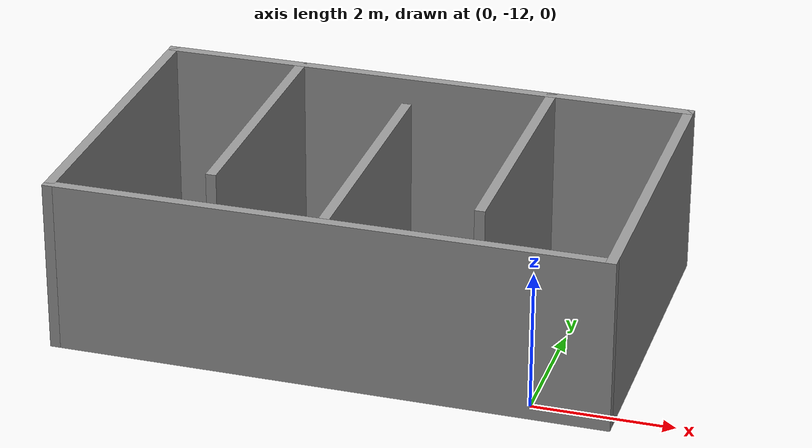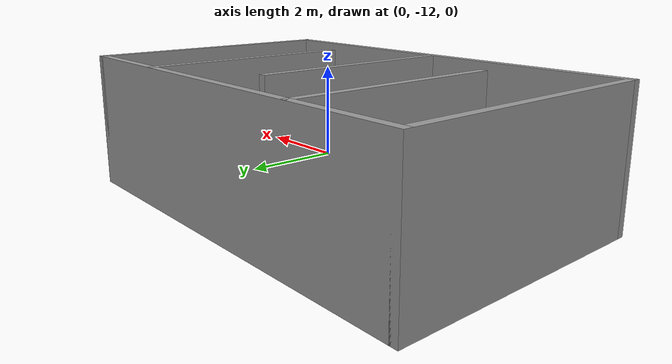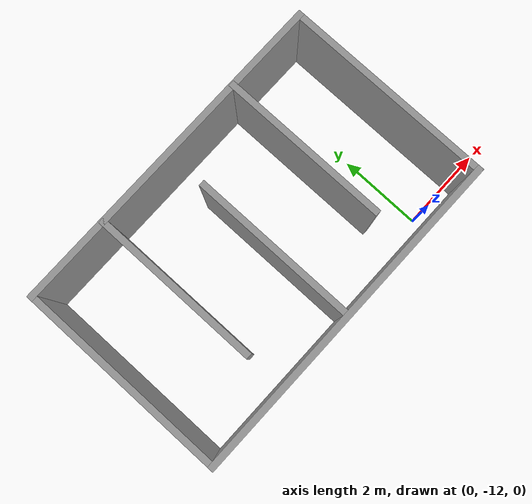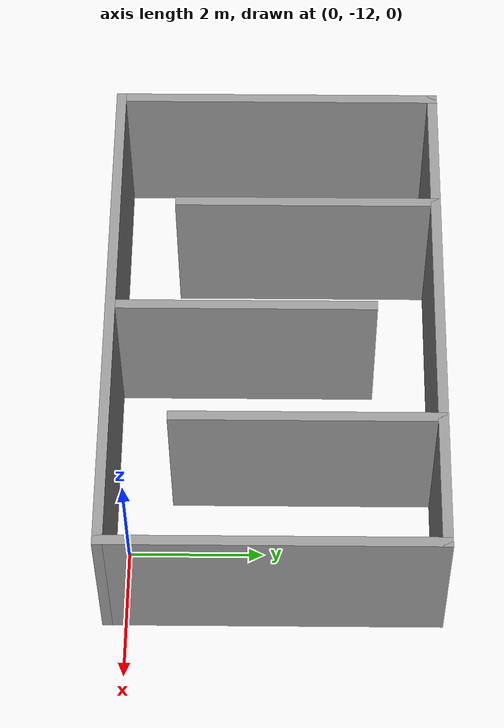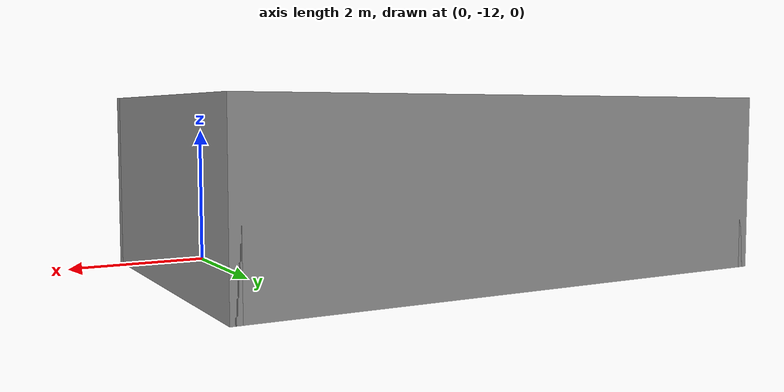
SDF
<?xml version='1.0'?>
<sdf version='1.6'>
  <model name='Map7'>
    <pose frame=''>-2.82471 -9.84609 0 0 -0 0</pose>
    <link name='Wall_22'>
      <collision name='Wall_22_Collision'>
        <geometry>
          <box>
            <size>8 0.15 2.5</size>
          </box>
        </geometry>
        <pose frame=''>0 0 1.25 0 -0 0</pose>
      </collision>
      <visual name='Wall_22_Visual'>
        <pose frame=''>0 0 1.25 0 -0 0</pose>
        <geometry>
          <box>
            <size>8 0.15 2.5</size>
          </box>
        </geometry>
        <material>
          <script>
            <uri>file://media/materials/scripts/gazebo.material</uri>
            <name>Gazebo/Grey</name>
          </script>
          <ambient>1 1 1 1</ambient>
        </material>
      </visual>
      <pose frame=''>0 2.425 0 0 -0 0</pose>
    </link>
    <link name='Wall_23'>
      <collision name='Wall_23_Collision'>
        <geometry>
          <box>
            <size>5 0.15 2.5</size>
          </box>
        </geometry>
        <pose frame=''>0 0 1.25 0 -0 0</pose>
      </collision>
      <visual name='Wall_23_Visual'>
        <pose frame=''>0 0 1.25 0 -0 0</pose>
        <geometry>
          <box>
            <size>5 0.15 2.5</size>
          </box>
        </geometry>
        <material>
          <script>
            <uri>file://media/materials/scripts/gazebo.material</uri>
            <name>Gazebo/Grey</name>
          </script>
          <ambient>1 1 1 1</ambient>
        </material>
      </visual>
      <pose frame=''>3.925 0 0 0 0 -1.5708</pose>
    </link>
    <link name='Wall_24'>
      <collision name='Wall_24_Collision'>
        <geometry>
          <box>
            <size>8 0.15 2.5</size>
          </box>
        </geometry>
        <pose frame=''>0 0 1.25 0 -0 0</pose>
      </collision>
      <visual name='Wall_24_Visual'>
        <pose frame=''>0 0 1.25 0 -0 0</pose>
        <geometry>
          <box>
            <size>8 0.15 2.5</size>
          </box>
        </geometry>
        <material>
          <script>
            <uri>file://media/materials/scripts/gazebo.material</uri>
            <name>Gazebo/Grey</name>
          </script>
          <ambient>1 1 1 1</ambient>
        </material>
      </visual>
      <pose frame=''>0 -2.425 0 0 -0 3.14159</pose>
    </link>
    <link name='Wall_25'>
      <collision name='Wall_25_Collision'>
        <geometry>
          <box>
            <size>5 0.15 2.5</size>
          </box>
        </geometry>
        <pose frame=''>0 0 1.25 0 -0 0</pose>
      </collision>
      <visual name='Wall_25_Visual'>
        <pose frame=''>0 0 1.25 0 -0 0</pose>
        <geometry>
          <box>
            <size>5 0.15 2.5</size>
          </box>
        </geometry>
        <material>
          <script>
            <uri>file://media/materials/scripts/gazebo.material</uri>
            <name>Gazebo/Grey</name>
          </script>
          <ambient>1 1 1 1</ambient>
        </material>
      </visual>
      <pose frame=''>-3.925 0 0 0 -0 1.5708</pose>
    </link>
    <link name='Wall_27'>
      <collision name='Wall_27_Collision'>
        <geometry>
          <box>
            <size>4 0.15 2.5</size>
          </box>
        </geometry>
        <pose frame=''>0 0 1.25 0 -0 0</pose>
      </collision>
      <visual name='Wall_27_Visual'>
        <pose frame=''>0 0 1.25 0 -0 0</pose>
        <geometry>
          <box>
            <size>4 0.15 2.5</size>
          </box>
        </geometry>
        <material>
          <script>
            <uri>file://media/materials/scripts/gazebo.material</uri>
            <name>Gazebo/Grey</name>
          </script>
          <ambient>1 1 1 1</ambient>
        </material>
      </visual>
      <pose frame=''>-0.015927 -0.484298 0 0 -0 1.5708</pose>
    </link>
    <link name='Wall_29'>
      <collision name='Wall_29_Collision'>
        <geometry>
          <box>
            <size>4 0.15 2.5</size>
          </box>
        </geometry>
        <pose frame=''>0 0 1.25 0 -0 0</pose>
      </collision>
      <visual name='Wall_29_Visual'>
        <pose frame=''>0 0 1.25 0 -0 0</pose>
        <geometry>
          <box>
            <size>4 0.15 2.5</size>
          </box>
        </geometry>
        <material>
          <script>
            <uri>file://media/materials/scripts/gazebo.material</uri>
            <name>Gazebo/Grey</name>
          </script>
          <ambient>1 1 1 1</ambient>
        </material>
      </visual>
      <pose frame=''>-1.91264 0.476869 0 0 0 -1.5708</pose>
    </link>
    <link name='Wall_31'>
      <collision name='Wall_31_Collision'>
        <geometry>
          <box>
            <size>4 0.15 2.5</size>
          </box>
        </geometry>
        <pose frame=''>0 0 1.25 0 -0 0</pose>
      </collision>
      <visual name='Wall_31_Visual'>
        <pose frame=''>0 0 1.25 0 -0 0</pose>
        <geometry>
          <box>
            <size>4 0.15 2.5</size>
          </box>
        </geometry>
        <material>
          <script>
            <uri>file://media/materials/scripts/gazebo.material</uri>
            <name>Gazebo/Grey</name>
          </script>
          <ambient>1 1 1 1</ambient>
        </material>
      </visual>
      <pose frame=''>1.90391 0.476869 0 0 0 -1.5708</pose>
    </link>
    <static>1</static>
  </model>
</sdf>
